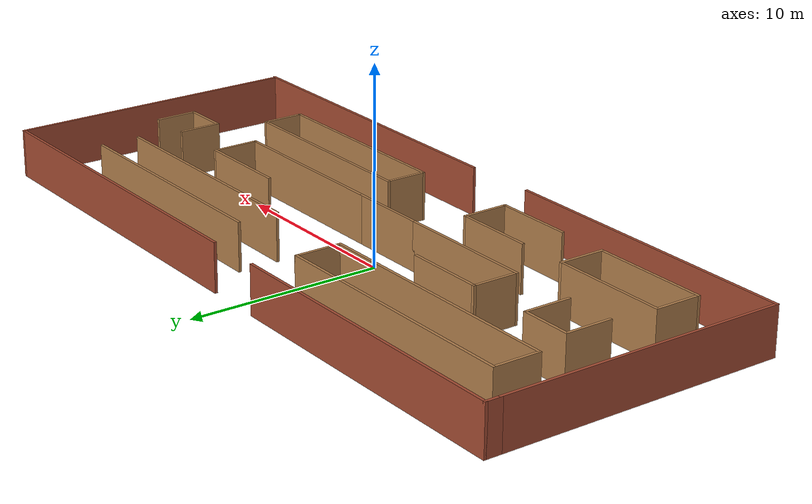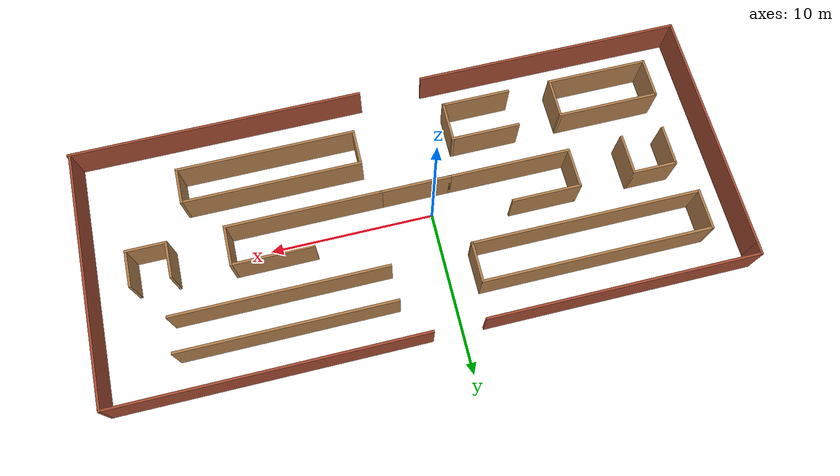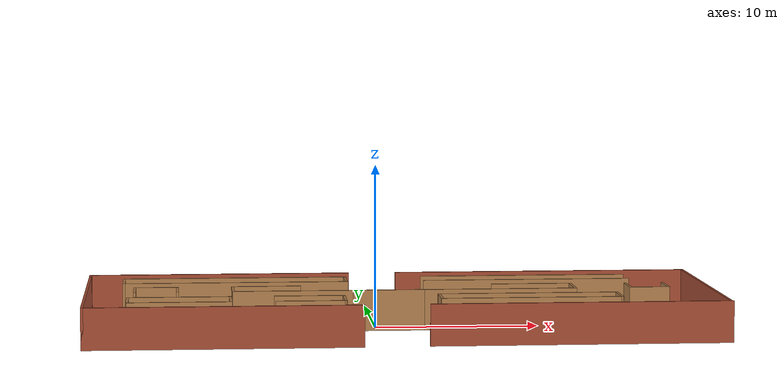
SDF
<?xml version='1.0'?>
<sdf version='1.7'>
  <model name='my_world_2'>
    <pose>1.4734 -0.292668 0 0 -0 0</pose>
    <link name='Wall_10'>
      <collision name='Wall_10_Collision'>
        <geometry>
          <box>
            <size>16.5 0.15 2.5</size>
          </box>
        </geometry>
        <pose>0 0 1.25 0 -0 0</pose>
      </collision>
      <visual name='Wall_10_Visual'>
        <pose>0 0 1.25 0 -0 0</pose>
        <geometry>
          <box>
            <size>16.5 0.15 2.5</size>
          </box>
        </geometry>
        <material>
          <script>
            <uri>file://media/materials/scripts/gazebo.material</uri>
            <name>Gazebo/Bricks</name>
          </script>
          <ambient>1 1 1 1</ambient>
        </material>
        <meta>
          <layer>0</layer>
        </meta>
      </visual>
      <pose>-10.9155 7.8 0 0 -0 0</pose>
    </link>
    <link name='Wall_12'>
      <collision name='Wall_12_Collision'>
        <geometry>
          <box>
            <size>18.75 0.15 2.5</size>
          </box>
        </geometry>
        <pose>0 0 1.25 0 -0 0</pose>
      </collision>
      <visual name='Wall_12_Visual'>
        <pose>0 0 1.25 0 -0 0</pose>
        <geometry>
          <box>
            <size>18.75 0.15 2.5</size>
          </box>
        </geometry>
        <material>
          <script>
            <uri>file://media/materials/scripts/gazebo.material</uri>
            <name>Gazebo/Bricks</name>
          </script>
          <ambient>1 1 1 1</ambient>
        </material>
        <meta>
          <layer>0</layer>
        </meta>
      </visual>
      <pose>9.70952 7.8 0 0 -0 3.14159</pose>
    </link>
    <link name='Wall_14'>
      <collision name='Wall_14_Collision'>
        <geometry>
          <box>
            <size>14 0.15 2.5</size>
          </box>
        </geometry>
        <pose>0 0 1.25 0 -0 0</pose>
      </collision>
      <visual name='Wall_14_Visual'>
        <pose>0 0 1.25 0 -0 0</pose>
        <geometry>
          <box>
            <size>14 0.15 2.5</size>
          </box>
        </geometry>
        <material>
          <script>
            <uri>file://media/materials/scripts/gazebo.material</uri>
            <name>Gazebo/Wood</name>
          </script>
          <ambient>1 1 1 1</ambient>
        </material>
        <meta>
          <layer>0</layer>
        </meta>
      </visual>
      <pose>-9.97885 5.65428 0 0 -0 0</pose>
    </link>
    <link name='Wall_15'>
      <collision name='Wall_15_Collision'>
        <geometry>
          <box>
            <size>2.5 0.15 2.5</size>
          </box>
        </geometry>
        <pose>0 0 1.25 0 -0 0</pose>
      </collision>
      <visual name='Wall_15_Visual'>
        <pose>0 0 1.25 0 -0 0</pose>
        <geometry>
          <box>
            <size>2.5 0.15 2.5</size>
          </box>
        </geometry>
        <material>
          <script>
            <uri>file://media/materials/scripts/gazebo.material</uri>
            <name>Gazebo/Wood</name>
          </script>
          <ambient>1 1 1 1</ambient>
        </material>
        <meta>
          <layer>0</layer>
        </meta>
      </visual>
      <pose>-3.05385 4.47928 0 0 -0 -1.5708</pose>
    </link>
    <link name='Wall_16'>
      <collision name='Wall_16_Collision'>
        <geometry>
          <box>
            <size>14 0.15 2.5</size>
          </box>
        </geometry>
        <pose>0 0 1.25 0 -0 0</pose>
      </collision>
      <visual name='Wall_16_Visual'>
        <pose>0 0 1.25 0 -0 0</pose>
        <geometry>
          <box>
            <size>14 0.15 2.5</size>
          </box>
        </geometry>
        <material>
          <script>
            <uri>file://media/materials/scripts/gazebo.material</uri>
            <name>Gazebo/Wood</name>
          </script>
          <ambient>1 1 1 1</ambient>
        </material>
        <meta>
          <layer>0</layer>
        </meta>
      </visual>
      <pose>-9.97885 3.30428 0 0 -0 3.14159</pose>
    </link>
    <link name='Wall_17'>
      <collision name='Wall_17_Collision'>
        <geometry>
          <box>
            <size>2.5 0.15 2.5</size>
          </box>
        </geometry>
        <pose>0 0 1.25 0 -0 0</pose>
      </collision>
      <visual name='Wall_17_Visual'>
        <pose>0 0 1.25 0 -0 0</pose>
        <geometry>
          <box>
            <size>2.5 0.15 2.5</size>
          </box>
        </geometry>
        <material>
          <script>
            <uri>file://media/materials/scripts/gazebo.material</uri>
            <name>Gazebo/Wood</name>
          </script>
          <ambient>1 1 1 1</ambient>
        </material>
        <meta>
          <layer>0</layer>
        </meta>
      </visual>
      <pose>-16.9039 4.47928 0 0 -0 1.5708</pose>
    </link>
    <link name='Wall_23'>
      <collision name='Wall_23_Collision'>
        <geometry>
          <box>
            <size>2.5 0.15 2.5</size>
          </box>
        </geometry>
        <pose>0 0 1.25 0 -0 0</pose>
      </collision>
      <visual name='Wall_23_Visual'>
        <pose>0 0 1.25 0 -0 0</pose>
        <geometry>
          <box>
            <size>2.5 0.15 2.5</size>
          </box>
        </geometry>
        <material>
          <script>
            <uri>file://media/materials/scripts/gazebo.material</uri>
            <name>Gazebo/Wood</name>
          </script>
          <ambient>1 1 1 1</ambient>
        </material>
        <meta>
          <layer>0</layer>
        </meta>
      </visual>
      <pose>-10.2044 0.152559 0 0 -0 1.5708</pose>
    </link>
    <link name='Wall_36'>
      <collision name='Wall_36_Collision'>
        <geometry>
          <box>
            <size>13 0.15 2.5</size>
          </box>
        </geometry>
        <pose>0 0 1.25 0 -0 0</pose>
      </collision>
      <visual name='Wall_36_Visual'>
        <pose>0 0 1.25 0 -0 0</pose>
        <geometry>
          <box>
            <size>13 0.15 2.5</size>
          </box>
        </geometry>
        <material>
          <script>
            <uri>file://media/materials/scripts/gazebo.material</uri>
            <name>Gazebo/Wood</name>
          </script>
          <ambient>1 1 1 1</ambient>
        </material>
        <meta>
          <layer>0</layer>
        </meta>
      </visual>
      <pose>8.27029 3.50776 0 0 -0 0</pose>
    </link>
    <link name='Wall_38'>
      <collision name='Wall_38_Collision'>
        <geometry>
          <box>
            <size>13 0.15 2.5</size>
          </box>
        </geometry>
        <pose>0 0 1.25 0 -0 0</pose>
      </collision>
      <visual name='Wall_38_Visual'>
        <pose>0 0 1.25 0 -0 0</pose>
        <geometry>
          <box>
            <size>13 0.15 2.5</size>
          </box>
        </geometry>
        <material>
          <script>
            <uri>file://media/materials/scripts/gazebo.material</uri>
            <name>Gazebo/Wood</name>
          </script>
          <ambient>1 1 1 1</ambient>
        </material>
        <meta>
          <layer>0</layer>
        </meta>
      </visual>
      <pose>8.27029 5.60776 0 0 -0 3.14159</pose>
    </link>
    <link name='Wall_4'>
      <collision name='Wall_4_Collision'>
        <geometry>
          <box>
            <size>15 0.15 2.5</size>
          </box>
        </geometry>
        <pose>0 0 1.25 0 -0 0</pose>
      </collision>
      <visual name='Wall_4_Visual'>
        <pose>0 0 1.25 0 -0 0</pose>
        <geometry>
          <box>
            <size>15 0.15 2.5</size>
          </box>
        </geometry>
        <material>
          <script>
            <uri>file://media/materials/scripts/gazebo.material</uri>
            <name>Gazebo/Bricks</name>
          </script>
          <ambient>1 1 1 1</ambient>
        </material>
        <meta>
          <layer>0</layer>
        </meta>
      </visual>
      <pose>-19.0905 -0.375 0 0 -0 -1.5708</pose>
    </link>
    <link name='Wall_41'>
      <collision name='Wall_41_Collision'>
        <geometry>
          <box>
            <size>2.5 0.15 2.5</size>
          </box>
        </geometry>
        <pose>0 0 1.25 0 -0 0</pose>
      </collision>
      <visual name='Wall_41_Visual'>
        <pose>0 0 1.25 0 -0 0</pose>
        <geometry>
          <box>
            <size>2.5 0.15 2.5</size>
          </box>
        </geometry>
        <material>
          <script>
            <uri>file://media/materials/scripts/gazebo.material</uri>
            <name>Gazebo/Wood</name>
          </script>
          <ambient>1 1 1 1</ambient>
        </material>
        <meta>
          <layer>0</layer>
        </meta>
      </visual>
      <pose>10.7188 0.152559 0 0 -0 1.5708</pose>
    </link>
    <link name='Wall_43'>
      <collision name='Wall_43_Collision'>
        <geometry>
          <box>
            <size>7.5 0.15 2.5</size>
          </box>
        </geometry>
        <pose>0 0 1.25 0 -0 0</pose>
      </collision>
      <visual name='Wall_43_Visual'>
        <pose>0 0 1.25 0 -0 0</pose>
        <geometry>
          <box>
            <size>7.5 0.15 2.5</size>
          </box>
        </geometry>
        <material>
          <script>
            <uri>file://media/materials/scripts/gazebo.material</uri>
            <name>Gazebo/Wood</name>
          </script>
          <ambient>1 1 1 1</ambient>
        </material>
        <meta>
          <layer>0</layer>
        </meta>
      </visual>
      <pose>-6.52941 -1.02244 0 0 -0 0</pose>
    </link>
    <link name='Wall_45'>
      <collision name='Wall_45_Collision'>
        <geometry>
          <box>
            <size>9.5 0.15 2.5</size>
          </box>
        </geometry>
        <pose>0 0 1.25 0 -0 0</pose>
      </collision>
      <visual name='Wall_45_Visual'>
        <pose>0 0 1.25 0 -0 0</pose>
        <geometry>
          <box>
            <size>9.5 0.15 2.5</size>
          </box>
        </geometry>
        <material>
          <script>
            <uri>file://media/materials/scripts/gazebo.material</uri>
            <name>Gazebo/Wood</name>
          </script>
          <ambient>1 1 1 1</ambient>
        </material>
        <meta>
          <layer>0</layer>
        </meta>
      </visual>
      <pose>6.04381 -1.02244 0 0 -0 3.14159</pose>
    </link>
    <link name='Wall_48'>
      <collision name='Wall_48_Collision'>
        <geometry>
          <box>
            <size>6.25 0.15 2.5</size>
          </box>
        </geometry>
        <pose>0 0 1.25 0 -0 0</pose>
      </collision>
      <visual name='Wall_48_Visual'>
        <pose>0 0 1.25 0 -0 0</pose>
        <geometry>
          <box>
            <size>6.25 0.15 2.5</size>
          </box>
        </geometry>
        <material>
          <script>
            <uri>file://media/materials/scripts/gazebo.material</uri>
            <name>Gazebo/Wood</name>
          </script>
          <ambient>1 1 1 1</ambient>
        </material>
        <meta>
          <layer>0</layer>
        </meta>
      </visual>
      <pose>-13.4817 -5.73874 0 0 -0 0</pose>
    </link>
    <link name='Wall_49'>
      <collision name='Wall_49_Collision'>
        <geometry>
          <box>
            <size>2.5 0.15 2.5</size>
          </box>
        </geometry>
        <pose>0 0 1.25 0 -0 0</pose>
      </collision>
      <visual name='Wall_49_Visual'>
        <pose>0 0 1.25 0 -0 0</pose>
        <geometry>
          <box>
            <size>2.5 0.15 2.5</size>
          </box>
        </geometry>
        <material>
          <script>
            <uri>file://media/materials/scripts/gazebo.material</uri>
            <name>Gazebo/Wood</name>
          </script>
          <ambient>1 1 1 1</ambient>
        </material>
        <meta>
          <layer>0</layer>
        </meta>
      </visual>
      <pose>-10.4317 -4.56374 0 0 -0 1.5708</pose>
    </link>
    <link name='Wall_50'>
      <collision name='Wall_50_Collision'>
        <geometry>
          <box>
            <size>6.25 0.15 2.5</size>
          </box>
        </geometry>
        <pose>0 0 1.25 0 -0 0</pose>
      </collision>
      <visual name='Wall_50_Visual'>
        <pose>0 0 1.25 0 -0 0</pose>
        <geometry>
          <box>
            <size>6.25 0.15 2.5</size>
          </box>
        </geometry>
        <material>
          <script>
            <uri>file://media/materials/scripts/gazebo.material</uri>
            <name>Gazebo/Wood</name>
          </script>
          <ambient>1 1 1 1</ambient>
        </material>
        <meta>
          <layer>0</layer>
        </meta>
      </visual>
      <pose>-13.4817 -3.38874 0 0 -0 3.14159</pose>
    </link>
    <link name='Wall_52'>
      <collision name='Wall_52_Collision'>
        <geometry>
          <box>
            <size>2.5 0.15 2.5</size>
          </box>
        </geometry>
        <pose>0 0 1.25 0 -0 0</pose>
      </collision>
      <visual name='Wall_52_Visual'>
        <pose>0 0 1.25 0 -0 0</pose>
        <geometry>
          <box>
            <size>2.5 0.15 2.5</size>
          </box>
        </geometry>
        <material>
          <script>
            <uri>file://media/materials/scripts/gazebo.material</uri>
            <name>Gazebo/Wood</name>
          </script>
          <ambient>1 1 1 1</ambient>
        </material>
        <meta>
          <layer>0</layer>
        </meta>
      </visual>
      <pose>-16.5317 -4.56374 0 0 -0 1.5708</pose>
    </link>
    <link name='Wall_54'>
      <collision name='Wall_54_Collision'>
        <geometry>
          <box>
            <size>2.25 0.15 2.5</size>
          </box>
        </geometry>
        <pose>0 0 1.25 0 -0 0</pose>
      </collision>
      <visual name='Wall_54_Visual'>
        <pose>0 0 1.25 0 -0 0</pose>
        <geometry>
          <box>
            <size>2.25 0.15 2.5</size>
          </box>
        </geometry>
        <material>
          <script>
            <uri>file://media/materials/scripts/gazebo.material</uri>
            <name>Gazebo/Wood</name>
          </script>
          <ambient>1 1 1 1</ambient>
        </material>
        <meta>
          <layer>0</layer>
        </meta>
      </visual>
      <pose>2.12443 -4.18874 0 0 -0 -1.5708</pose>
    </link>
    <link name='Wall_55'>
      <collision name='Wall_55_Collision'>
        <geometry>
          <box>
            <size>10.9484 0.15 2.5</size>
          </box>
        </geometry>
        <pose>0 0 1.25 0 -0 0</pose>
      </collision>
      <visual name='Wall_55_Visual'>
        <pose>0 0 1.25 0 -0 0</pose>
        <geometry>
          <box>
            <size>10.9484 0.15 2.5</size>
          </box>
        </geometry>
        <material>
          <script>
            <uri>file://media/materials/scripts/gazebo.material</uri>
            <name>Gazebo/Wood</name>
          </script>
          <ambient>1 1 1 1</ambient>
        </material>
        <meta>
          <layer>0</layer>
        </meta>
      </visual>
      <pose>7.52362 -5.23874 0 0 -0 0</pose>
    </link>
    <link name='Wall_58'>
      <collision name='Wall_58_Collision'>
        <geometry>
          <box>
            <size>2.25 0.15 2.5</size>
          </box>
        </geometry>
        <pose>0 0 1.25 0 -0 0</pose>
      </collision>
      <visual name='Wall_58_Visual'>
        <pose>0 0 1.25 0 -0 0</pose>
        <geometry>
          <box>
            <size>2.25 0.15 2.5</size>
          </box>
        </geometry>
        <material>
          <script>
            <uri>file://media/materials/scripts/gazebo.material</uri>
            <name>Gazebo/Wood</name>
          </script>
          <ambient>1 1 1 1</ambient>
        </material>
        <meta>
          <layer>0</layer>
        </meta>
      </visual>
      <pose>12.9228 -4.18874 0 0 -0 1.5708</pose>
    </link>
    <link name='Wall_59'>
      <collision name='Wall_59_Collision'>
        <geometry>
          <box>
            <size>10.9484 0.15 2.5</size>
          </box>
        </geometry>
        <pose>0 0 1.25 0 -0 0</pose>
      </collision>
      <visual name='Wall_59_Visual'>
        <pose>0 0 1.25 0 -0 0</pose>
        <geometry>
          <box>
            <size>10.9484 0.15 2.5</size>
          </box>
        </geometry>
        <material>
          <script>
            <uri>file://media/materials/scripts/gazebo.material</uri>
            <name>Gazebo/Wood</name>
          </script>
          <ambient>1 1 1 1</ambient>
        </material>
        <meta>
          <layer>0</layer>
        </meta>
      </visual>
      <pose>7.52362 -3.13874 0 0 -0 3.14159</pose>
    </link>
    <link name='Wall_6'>
      <collision name='Wall_6_Collision'>
        <geometry>
          <box>
            <size>15.5 0.15 2.5</size>
          </box>
        </geometry>
        <pose>0 0 1.25 0 -0 0</pose>
      </collision>
      <visual name='Wall_6_Visual'>
        <pose>0 0 1.25 0 -0 0</pose>
        <geometry>
          <box>
            <size>15.5 0.15 2.5</size>
          </box>
        </geometry>
        <material>
          <script>
            <uri>file://media/materials/scripts/gazebo.material</uri>
            <name>Gazebo/Bricks</name>
          </script>
          <ambient>1 1 1 1</ambient>
        </material>
        <meta>
          <layer>0</layer>
        </meta>
      </visual>
      <pose>19.0095 0.125 0 0 -0 1.5708</pose>
    </link>
    <link name='Wall_62'>
      <collision name='Wall_62_Collision'>
        <geometry>
          <box>
            <size>4.25 0.15 2.5</size>
          </box>
        </geometry>
        <pose>0 0 1.25 0 -0 0</pose>
      </collision>
      <visual name='Wall_62_Visual'>
        <pose>0 0 1.25 0 -0 0</pose>
        <geometry>
          <box>
            <size>4.25 0.15 2.5</size>
          </box>
        </geometry>
        <material>
          <script>
            <uri>file://media/materials/scripts/gazebo.material</uri>
            <name>Gazebo/Wood</name>
          </script>
          <ambient>1 1 1 1</ambient>
        </material>
        <meta>
          <layer>0</layer>
        </meta>
      </visual>
      <pose>-5.68864 -5.72136 0 0 -0 0</pose>
    </link>
    <link name='Wall_63'>
      <collision name='Wall_63_Collision'>
        <geometry>
          <box>
            <size>2.5 0.15 2.5</size>
          </box>
        </geometry>
        <pose>0 0 1.25 0 -0 0</pose>
      </collision>
      <visual name='Wall_63_Visual'>
        <pose>0 0 1.25 0 -0 0</pose>
        <geometry>
          <box>
            <size>2.5 0.15 2.5</size>
          </box>
        </geometry>
        <material>
          <script>
            <uri>file://media/materials/scripts/gazebo.material</uri>
            <name>Gazebo/Wood</name>
          </script>
          <ambient>1 1 1 1</ambient>
        </material>
        <meta>
          <layer>0</layer>
        </meta>
      </visual>
      <pose>-3.63864 -4.54636 0 0 -0 1.5708</pose>
    </link>
    <link name='Wall_64'>
      <collision name='Wall_64_Collision'>
        <geometry>
          <box>
            <size>4.25 0.15 2.5</size>
          </box>
        </geometry>
        <pose>0 0 1.25 0 -0 0</pose>
      </collision>
      <visual name='Wall_64_Visual'>
        <pose>0 0 1.25 0 -0 0</pose>
        <geometry>
          <box>
            <size>4.25 0.15 2.5</size>
          </box>
        </geometry>
        <material>
          <script>
            <uri>file://media/materials/scripts/gazebo.material</uri>
            <name>Gazebo/Wood</name>
          </script>
          <ambient>1 1 1 1</ambient>
        </material>
        <meta>
          <layer>0</layer>
        </meta>
      </visual>
      <pose>-5.68864 -3.37136 0 0 -0 3.14159</pose>
    </link>
    <link name='Wall_66'>
      <collision name='Wall_66_Collision'>
        <geometry>
          <box>
            <size>16.5 0.15 2.5</size>
          </box>
        </geometry>
        <pose>0 0 1.25 0 -0 0</pose>
      </collision>
      <visual name='Wall_66_Visual'>
        <pose>0 0 1.25 0 -0 0</pose>
        <geometry>
          <box>
            <size>16.5 0.15 2.5</size>
          </box>
        </geometry>
        <material>
          <script>
            <uri>file://media/materials/scripts/gazebo.material</uri>
            <name>Gazebo/Bricks</name>
          </script>
          <ambient>1 1 1 1</ambient>
        </material>
        <meta>
          <layer>0</layer>
        </meta>
      </visual>
      <pose>-10.9155 -7.8 0 0 -0 0</pose>
    </link>
    <link name='Wall_68'>
      <collision name='Wall_68_Collision'>
        <geometry>
          <box>
            <size>18 0.15 2.5</size>
          </box>
        </geometry>
        <pose>0 0 1.25 0 -0 0</pose>
      </collision>
      <visual name='Wall_68_Visual'>
        <pose>0 0 1.25 0 -0 0</pose>
        <geometry>
          <box>
            <size>18 0.15 2.5</size>
          </box>
        </geometry>
        <material>
          <script>
            <uri>file://media/materials/scripts/gazebo.material</uri>
            <name>Gazebo/Bricks</name>
          </script>
          <ambient>1 1 1 1</ambient>
        </material>
        <meta>
          <layer>0</layer>
        </meta>
      </visual>
      <pose>10.1655 -7.69808 0 0 -0 0</pose>
    </link>
    <link name='Wall_70'>
      <collision name='Wall_70_Collision'>
        <geometry>
          <box>
            <size>2.25 0.15 2.5</size>
          </box>
        </geometry>
        <pose>0 0 1.25 0 -0 0</pose>
      </collision>
      <visual name='Wall_70_Visual'>
        <pose>0 0 1.25 0 -0 0</pose>
        <geometry>
          <box>
            <size>2.25 0.15 2.5</size>
          </box>
        </geometry>
        <material>
          <script>
            <uri>file://media/materials/scripts/gazebo.material</uri>
            <name>Gazebo/Wood</name>
          </script>
          <ambient>1 1 1 1</ambient>
        </material>
        <meta>
          <layer>0</layer>
        </meta>
      </visual>
      <pose>14.1593 0.174007 0 0 -0 -1.5708</pose>
    </link>
    <link name='Wall_71'>
      <collision name='Wall_71_Collision'>
        <geometry>
          <box>
            <size>2.5 0.15 2.5</size>
          </box>
        </geometry>
        <pose>0 0 1.25 0 -0 0</pose>
      </collision>
      <visual name='Wall_71_Visual'>
        <pose>0 0 1.25 0 -0 0</pose>
        <geometry>
          <box>
            <size>2.5 0.15 2.5</size>
          </box>
        </geometry>
        <material>
          <script>
            <uri>file://media/materials/scripts/gazebo.material</uri>
            <name>Gazebo/Wood</name>
          </script>
          <ambient>1 1 1 1</ambient>
        </material>
        <meta>
          <layer>0</layer>
        </meta>
      </visual>
      <pose>15.3343 -0.875993 0 0 -0 0</pose>
    </link>
    <link name='Wall_72'>
      <collision name='Wall_72_Collision'>
        <geometry>
          <box>
            <size>2.25 0.15 2.5</size>
          </box>
        </geometry>
        <pose>0 0 1.25 0 -0 0</pose>
      </collision>
      <visual name='Wall_72_Visual'>
        <pose>0 0 1.25 0 -0 0</pose>
        <geometry>
          <box>
            <size>2.25 0.15 2.5</size>
          </box>
        </geometry>
        <material>
          <script>
            <uri>file://media/materials/scripts/gazebo.material</uri>
            <name>Gazebo/Wood</name>
          </script>
          <ambient>1 1 1 1</ambient>
        </material>
        <meta>
          <layer>0</layer>
        </meta>
      </visual>
      <pose>16.5093 0.174007 0 0 -0 1.5708</pose>
    </link>
    <link name='Wall_74'>
      <collision name='Wall_74_Collision'>
        <geometry>
          <box>
            <size>2.5 0.15 2.5</size>
          </box>
        </geometry>
        <pose>0 0 1.25 0 -0 0</pose>
      </collision>
      <visual name='Wall_74_Visual'>
        <pose>0 0 1.25 0 -0 0</pose>
        <geometry>
          <box>
            <size>2.5 0.15 2.5</size>
          </box>
        </geometry>
        <material>
          <script>
            <uri>file://media/materials/scripts/gazebo.material</uri>
            <name>Gazebo/Wood</name>
          </script>
          <ambient>1 1 1 1</ambient>
        </material>
        <meta>
          <layer>0</layer>
        </meta>
      </visual>
      <pose>-16.1823 0.093039 0 0 -0 1.5708</pose>
    </link>
    <link name='Wall_75'>
      <collision name='Wall_75_Collision'>
        <geometry>
          <box>
            <size>2.75 0.15 2.5</size>
          </box>
        </geometry>
        <pose>0 0 1.25 0 -0 0</pose>
      </collision>
      <visual name='Wall_75_Visual'>
        <pose>0 0 1.25 0 -0 0</pose>
        <geometry>
          <box>
            <size>2.75 0.15 2.5</size>
          </box>
        </geometry>
        <material>
          <script>
            <uri>file://media/materials/scripts/gazebo.material</uri>
            <name>Gazebo/Wood</name>
          </script>
          <ambient>1 1 1 1</ambient>
        </material>
        <meta>
          <layer>0</layer>
        </meta>
      </visual>
      <pose>-14.8823 1.26804 0 0 -0 0</pose>
    </link>
    <link name='Wall_76'>
      <collision name='Wall_76_Collision'>
        <geometry>
          <box>
            <size>2.5 0.15 2.5</size>
          </box>
        </geometry>
        <pose>0 0 1.25 0 -0 0</pose>
      </collision>
      <visual name='Wall_76_Visual'>
        <pose>0 0 1.25 0 -0 0</pose>
        <geometry>
          <box>
            <size>2.5 0.15 2.5</size>
          </box>
        </geometry>
        <material>
          <script>
            <uri>file://media/materials/scripts/gazebo.material</uri>
            <name>Gazebo/Wood</name>
          </script>
          <ambient>1 1 1 1</ambient>
        </material>
        <meta>
          <layer>0</layer>
        </meta>
      </visual>
      <pose>-13.5823 0.093039 0 0 -0 -1.5708</pose>
    </link>
    <link name='Wall_78'>
      <collision name='Wall_78_Collision'>
        <geometry>
          <box>
            <size>4.37322 0.15 2.5</size>
          </box>
        </geometry>
        <pose>0 0 1.25 0 -0 0</pose>
      </collision>
      <visual name='Wall_78_Visual'>
        <pose>0 0 1.25 0 -0 0</pose>
        <geometry>
          <box>
            <size>4.37322 0.15 2.5</size>
          </box>
        </geometry>
        <material>
          <script>
            <uri>file://media/materials/scripts/gazebo.material</uri>
            <name>Gazebo/Wood</name>
          </script>
          <ambient>1 1 1 1</ambient>
        </material>
        <meta>
          <layer>0</layer>
        </meta>
      </visual>
      <pose>-0.742797 -1.02244 0 0 -0 0</pose>
    </link>
    <link name='Wall_8'>
      <collision name='Wall_8_Collision'>
        <geometry>
          <box>
            <size>0.9 0.15 2.5</size>
          </box>
        </geometry>
        <pose>0 0 1.25 0 -0 0</pose>
      </collision>
      <visual name='Wall_8_Visual'>
        <pose>0 0 1.25 0 -0 0</pose>
        <geometry>
          <box>
            <size>0.9 0.15 2.5</size>
          </box>
        </geometry>
        <material>
          <script>
            <uri>file://media/materials/scripts/gazebo.material</uri>
            <name>Gazebo/Bricks</name>
          </script>
          <ambient>1 1 1 1</ambient>
        </material>
        <meta>
          <layer>0</layer>
        </meta>
      </visual>
      <pose>-19.0905 7.425 0 0 -0 -1.5708</pose>
    </link>
    <link name='Wall_80'>
      <collision name='Wall_80_Collision'>
        <geometry>
          <box>
            <size>4.25 0.15 2.5</size>
          </box>
        </geometry>
        <pose>0 0 1.25 0 -0 0</pose>
      </collision>
      <visual name='Wall_80_Visual'>
        <pose>0 0 1.25 0 -0 0</pose>
        <geometry>
          <box>
            <size>4.25 0.15 2.5</size>
          </box>
        </geometry>
        <material>
          <script>
            <uri>file://media/materials/scripts/gazebo.material</uri>
            <name>Gazebo/Wood</name>
          </script>
          <ambient>1 1 1 1</ambient>
        </material>
        <meta>
          <layer>0</layer>
        </meta>
      </visual>
      <pose>-8.15441 1.32756 0 0 -0 0</pose>
    </link>
    <link name='Wall_82'>
      <collision name='Wall_82_Collision'>
        <geometry>
          <box>
            <size>5 0.15 2.5</size>
          </box>
        </geometry>
        <pose>0 0 1.25 0 -0 0</pose>
      </collision>
      <visual name='Wall_82_Visual'>
        <pose>0 0 1.25 0 -0 0</pose>
        <geometry>
          <box>
            <size>5 0.15 2.5</size>
          </box>
        </geometry>
        <material>
          <script>
            <uri>file://media/materials/scripts/gazebo.material</uri>
            <name>Gazebo/Wood</name>
          </script>
          <ambient>1 1 1 1</ambient>
        </material>
        <meta>
          <layer>0</layer>
        </meta>
      </visual>
      <pose>8.29381 1.32756 0 0 -0 3.14159</pose>
    </link>
    <static>1</static>
  </model>
</sdf>
